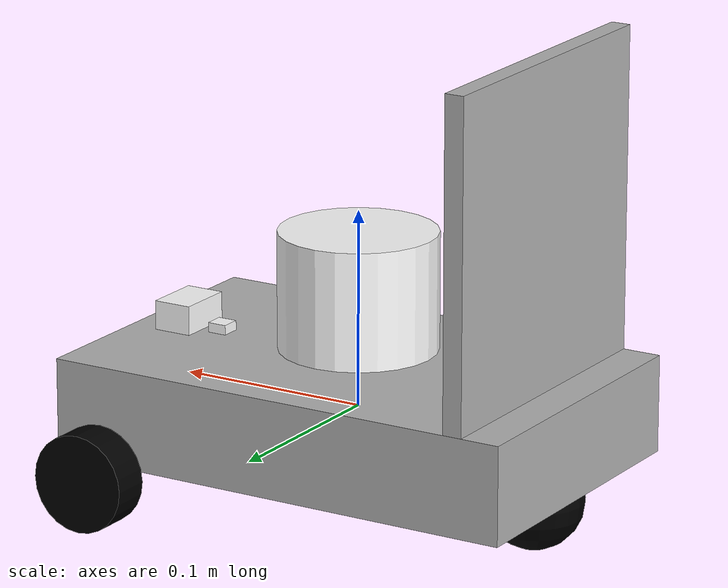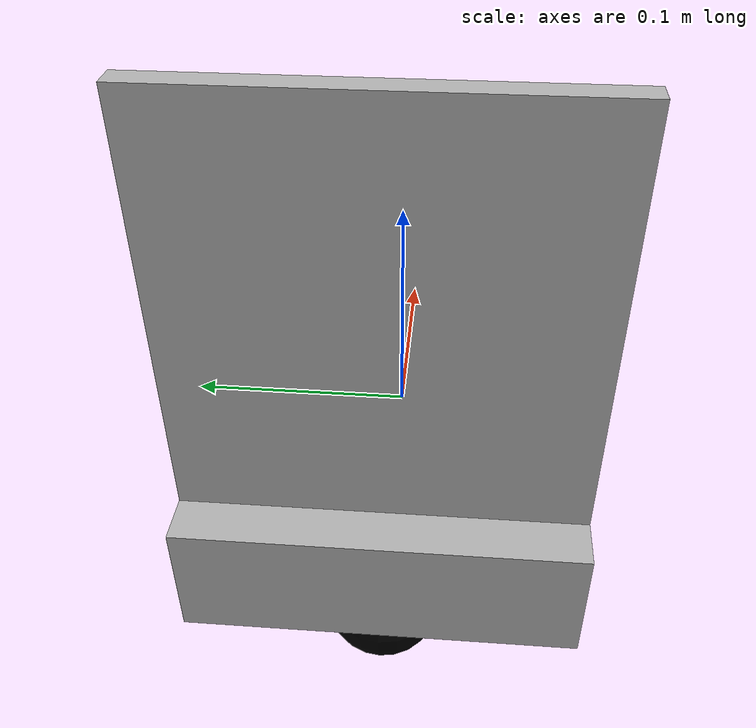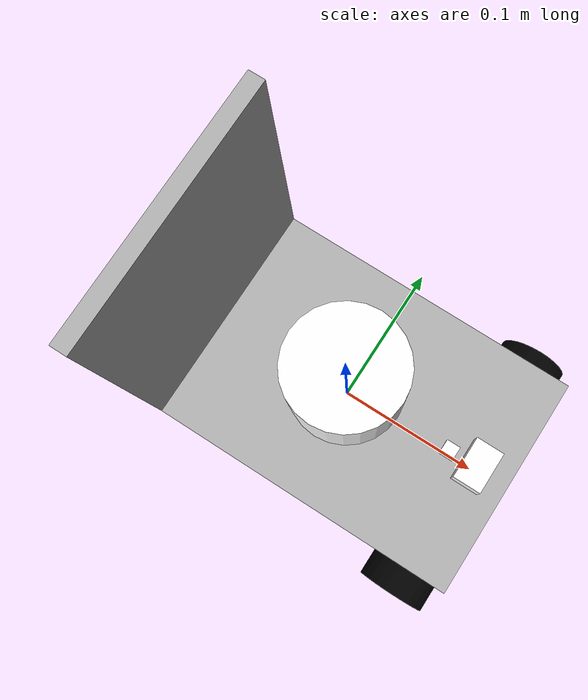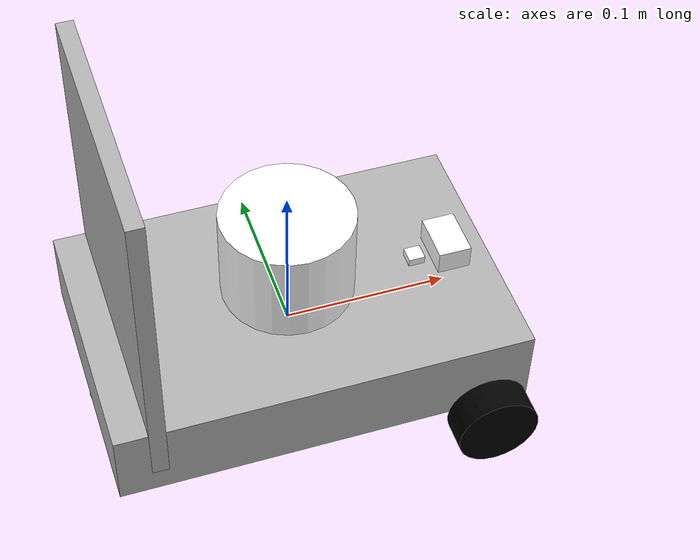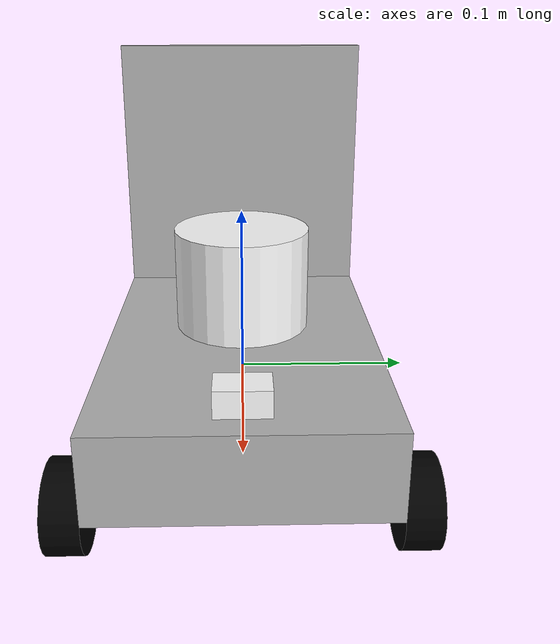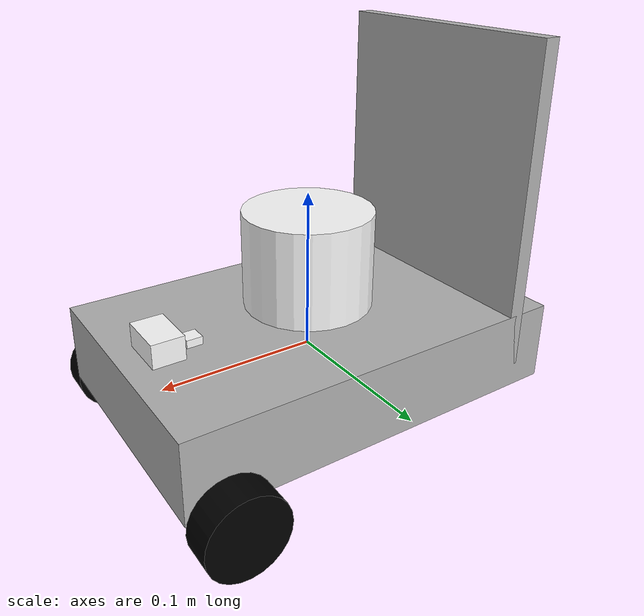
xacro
<?xml version="1.0"?>
<robot name="mybot" xmlns:xacro="http://ros.org/wiki/xacro">

  <xacro:include filename="$(find graduation_project)/urdf/mygazebo.xacro" />

  <link name="base_footprint"/>

  <joint name="base_joint" type="fixed">
    <parent link="base_footprint"/>
    <child link="base_link"/>
    <origin rpy="0 0 0" xyz="0 0 0"/>
  </joint>

  <gazebo reference = "base_link">
     <material>Gazebo/Grey</material>
  </gazebo>

  <gazebo reference = "wall_link">
     <material>Gazebo/Grey</material>
  </gazebo>
  <link name="base_link">
    <inertial>
     <origin xyz="0 0 0" rpy="0 0 0"/>
     <mass value="0.1"/>
     <inertia ixx="0.0001"  ixy="0"  ixz="0" iyy="0.0001" iyz="0" izz="0.001" />
    </inertial>

    <visual>
      <geometry>
        <box size="0.25 0.16 0.05"/>
      </geometry>
      <origin rpy="0 0 0" xyz="0 0 0"/>
      <material name="Grey">
          <color rgba="0.7 0.7 0.7 1.0"/>
      </material>
    </visual>

   <collision>
     <origin xyz="0 0 0" rpy="0 0 0"/>
     <geometry>
       <box size="0.25 0.16 0.05"/>
     </geometry>
   </collision>

  </link>

    <link name="wall_link">
    <inertial>
     <origin xyz="0 0 0" rpy="0 0 0"/>
     <mass value="0.1"/>
     <inertia ixx="0.0001"  ixy="0"  ixz="0" iyy="0.0001" iyz="0" izz="0.001" />
    </inertial>

    <visual>
      <geometry>
        <box size="0.01 0.16 0.2"/>
      </geometry>
      <origin rpy="0 0 0" xyz="0 0 0"/>
      <material name="Grey">
          <color rgba="0.7 0.7 0.7 1.0"/>
      </material>
    </visual>

   <collision>
     <origin xyz="0 0 0" rpy="0 0 0"/>
     <geometry>
       <box size="0.01 0.16 0.2"/>
     </geometry>
   </collision>

  </link>
   <joint name="wall_joint" type="fixed">
    <axis xyz="0 0 -1"/>
    <parent link="base_link"/>
    <child link="wall_link"/>
    <origin rpy="0 0 0" xyz=" -0.1 0.0 0.09"/>
  </joint>

  <link name="right_wheel_link">
    <inertial>
     <origin xyz="0 0 0" rpy="0 0 0"/>
     <mass value="0.1"/>
     <inertia ixx="0.0001"  ixy="0"  ixz="0" iyy="0.0001" iyz="0" izz="0.0001" />
    </inertial>

    <visual>
      <geometry>
        <cylinder length="0.02" radius="0.025"/>
      </geometry>
      <material name="black">
        <color rgba="0 0 0 1"/>
      </material>
    </visual>

    <collision>
     <origin xyz="0 0 0" rpy="0 0 0"/>
     <geometry>
       <cylinder length="0.02" radius="0.025"/>
     </geometry>
    </collision>
  </link>

  <joint name="right_wheel_joint" type="continuous">
    <axis xyz="0 0 -1"/>
    <parent link="base_link"/>
    <child link="right_wheel_link"/>
    <origin rpy="1.5707 0 0" xyz=" 0.1 -0.09 -0.03"/>
  </joint>

  <link name="left_wheel_link">
    <inertial>
     <origin xyz="0 0 0" rpy="0 0 0"/>
     <mass value="0.1"/>
     <inertia ixx="0.0001"  ixy="0"  ixz="0" iyy="0.0001" iyz="0" izz="0.0001" />
    </inertial>

    <visual>
      <geometry>
        <cylinder length="0.02" radius="0.025"/>
      </geometry>
      <material name="black">
        <color rgba="0 0 0 1"/>
      </material>
    </visual>

    <collision>
     <origin xyz="0 0 0" rpy="0 0 0"/>
     <geometry>
       <cylinder length="0.02" radius="0.025"/>
     </geometry>
    </collision>
  </link>

  <joint name="left_wheel_joint" type="continuous">
    <axis xyz="0 0 -1"/>
    <parent link="base_link"/>
    <child link="left_wheel_link"/>
    <origin rpy="1.5707 0 0" xyz="0.1 0.09 -0.03"/>
  </joint>

  <link name="ball_wheel_link">
    <inertial>
     <origin xyz="0 0 0" rpy="0 0 0"/>
     <mass value="0.1"/>
     <inertia ixx="0"  ixy="0"  ixz="0" iyy="0" iyz="0" izz="0" />
    </inertial>

    <visual>
      <geometry>
        <sphere radius="0.025"/>
      </geometry>
      <material name="black">
        <color rgba="0 0 0 1"/>
      </material>
    </visual>

    <collision>
     <origin xyz="0 0 0" rpy="0 0 0"/>
     <geometry>
       <sphere radius="0.025"/>
     </geometry>
    </collision>
  </link>

  <joint name="ball_wheel_joint" type="fixed">
    <axis xyz="0 0 1"/>
    <parent link="base_link"/>
    <child link="ball_wheel_link"/>
    <origin rpy="0 0 0" xyz="-0.10 0 -0.03"/>
  </joint>
  <!-- imu sensor -->
  <link name="imu">
    <visual>
      <geometry>
        <box size="0.01 0.01 0.01"/>
      </geometry>
      <material name="white">
          <color rgba="1 1 1 1"/>
      </material>
    </visual>
  </link>

  <joint name="imu_joint" type="fixed">
    <parent link="base_link"/>
    <child link="imu"/>
    <origin xyz="0.08 0 0.025"/>
  </joint>

  <!-- camera -->
  <link name="base_camera_link">
    <visual>
      <geometry>
        <box size="0.02 0.03 0.03"/>
      </geometry>
      <material name="white">
          <color rgba="1 1 1 1"/>
      </material>
    </visual>
  </link>

  <joint name="camera_joint" type="fixed">
    <parent link="base_link"/>
    <child link="base_camera_link"/>
    <origin xyz="0.1 0 0.025"/>
  </joint>
  <!-- laser lidar -->

  <link name="base_laser_link">
    <visual>
      <geometry>
        <cylinder length="0.06" radius="0.04"/>
      </geometry>
      <material name="white">
          <color rgba="1 1 1 1"/>
      </material>
    </visual>

  </link>

  <joint name="laser_joint" type="fixed">
    <parent link="base_link"/>
    <child link="base_laser_link"/>
    <origin xyz="0 0.0 0.06"/>
  </joint>

</robot>
